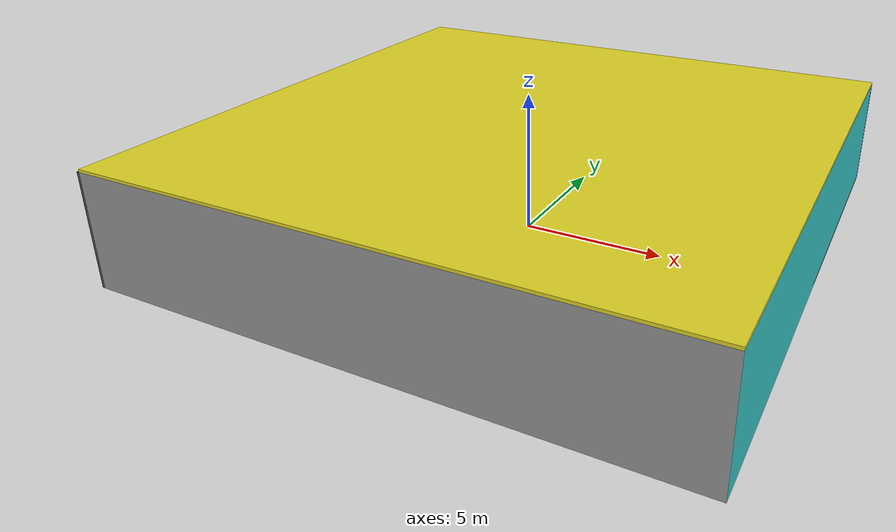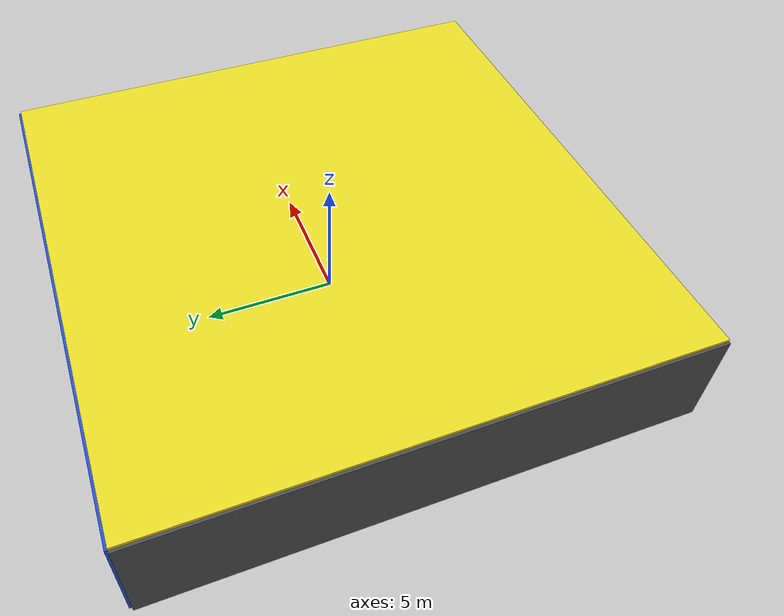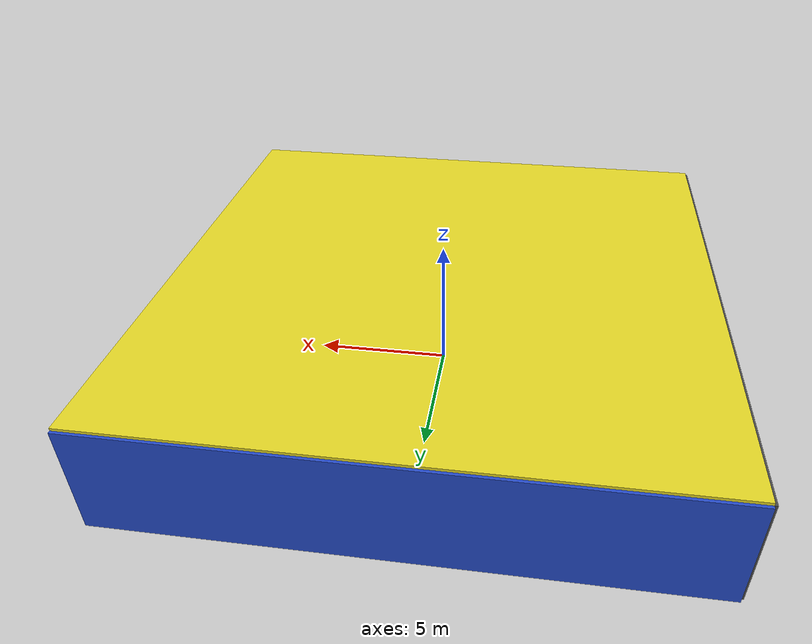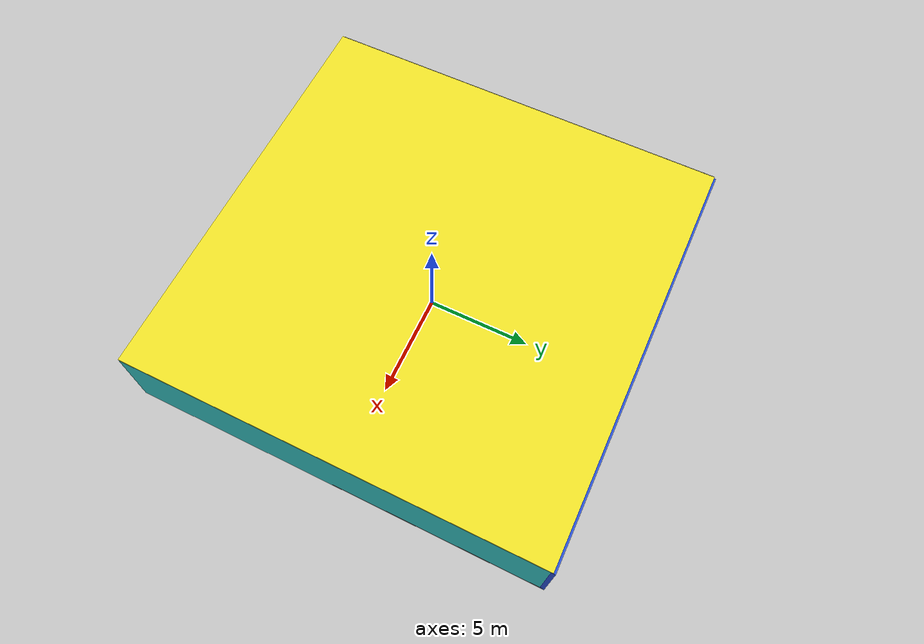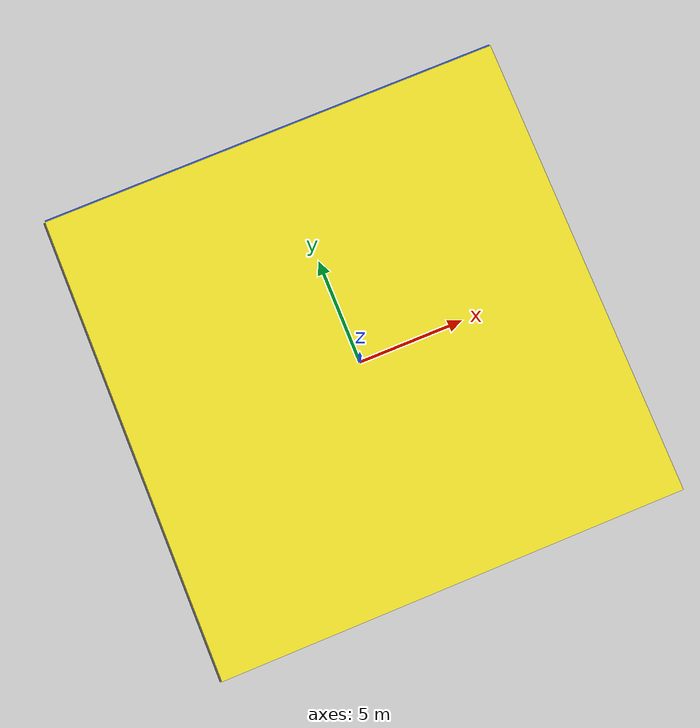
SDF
<sdf version="1.4">
 <world name="default">
  <physics type="ode">
   <max_step_size>0.001</max_step_size>
   <real_time_factor>1</real_time_factor>
   <real_time_update_rate>1000</real_time_update_rate>
   <gravity>0 0 -9.8</gravity>
  </physics>
  <scene><ambient>0.4 0.4 0.4 1</ambient><background>0.7 0.7 0.7 1</background><shadows>1</shadows></scene>
  <model name="Surrounding">
   <static>1</static>
   <link name="Ceiling">
    <collision name="Ceiling_Collision"><geometry><box><size>20 20 0.1</size></box></geometry></collision>
    <visual name="Ceiling_Visual">
     <geometry><box><size>20 20 0.1</size></box></geometry>
     <material>
      <script><uri>file://media/materials/scripts/gazebo.material</uri><name>Gazebo/YellowGlow</name></script>
     </material>
    </visual>
    <pose>0 0 4.05 0 0 0</pose>
   </link>
   <link name="Wall_South">
    <collision name="Wall_South_Collision">
     <geometry><box><size>20 0 4</size></box></geometry>
     <pose>0 0 2 0 -0 0</pose>
    </collision>
    <visual name="Wall_South_Visual">
     <pose>0 0 2 0 -0 0</pose>
     <geometry><box><size>20 0 4</size></box></geometry>
     <material>
      <script><uri>file://media/materials/scripts/gazebo.material</uri><name>Gazebo/Grey</name></script>
     </material>
    </visual>
    <velocity_decay><linear>0</linear><angular>0</angular></velocity_decay>
    <pose>0 -10 0 0 -0 0</pose>
   </link>
   <link name="Wall_East">
    <collision name="Wall_21_Collision">
     <geometry><box><size>20 0 4</size></box></geometry>
     <pose>0 0 2 0 -0 0</pose>
    </collision>
    <visual name="Wall_21_Visual">
     <pose>0 0 2 0 -0 0</pose>
     <geometry><box><size>20 0 4</size></box></geometry>
     <material>
      <script><uri>file://media/materials/scripts/gazebo.material</uri><name>Gazebo/Turquoise</name></script>
     </material>
    </visual>
    <velocity_decay><linear>0</linear><angular>0</angular></velocity_decay>
    <pose>10 0 0 0 -0 1.5708</pose>
   </link>
   <link name="Wall_North">
    <collision name="Wall_22_Collision">
     <geometry><box><size>20 0.2 4</size></box></geometry>
     <pose>0 0 2 0 -0 0</pose>
    </collision>
    <visual name="Wall_22_Visual">
     <pose>0 0 2 0 -0 0</pose>
     <geometry><box><size>20 0.2 4</size></box></geometry>
     <material>
      <script><uri>file://media/materials/scripts/gazebo.material</uri><name>Gazebo/BlueLaser</name></script>
     </material>
    </visual>
    <velocity_decay><linear>0</linear><angular>0</angular></velocity_decay>
    <pose>0 10 0 0 -0 0</pose>
   </link>
   <link name="Wall_West">
    <collision name="Wall_23_Collision">
     <geometry><box><size>20 0.2 4</size></box></geometry>
     <pose>0 0 2 0 -0 0</pose>
    </collision>
    <visual name="Wall_23_Visual">
     <pose>0 0 2 0 -0 0</pose>
     <geometry><box><size>20 0.2 4</size></box></geometry>
     <material>
      <script><uri>file://media/materials/scripts/gazebo.material</uri><name>Gazebo/Road</name></script>
     </material>
    </visual>
    <velocity_decay><linear>0</linear><angular>0</angular></velocity_decay>
    <pose>-10 0 0 0 0 -1.5708</pose>
   </link>
   <link name="Ground_link">
    <collision name="collision">
     <pose>0 0 .05 0 -0 0</pose>
     <geometry><box><size>20 20 0.1</size></box></geometry>
    </collision>
    <visual name="visual">
     <pose>0 0 .05 0 -0 0</pose>
     <geometry><box><size>20 20 0.1</size></box></geometry>
     <material>
      <script><uri>file://media/materials/scripts/gazebo.material</uri><name>Gazebo/Road</name></script>
     </material>
    </visual>
   </link>
   <static>1</static>
  </model>
  <spherical_coordinates>
   <surface_model>EARTH_WGS84</surface_model>
   <latitude_deg>0</latitude_deg>
   <longitude_deg>0</longitude_deg>
   <elevation>0</elevation>
   <heading_deg>0</heading_deg>
  </spherical_coordinates>
  <light name="lightball_0" type="diffuse">
   <diffuse>0.8 0.8 0.8 1</diffuse>
   <specular>0.2 0.2 0.2 1</specular>
   <attenuation>
    <range>100</range>
    <constant>0.7</constant>
    <linear>0.01</linear>
    <quadratic>0.001</quadratic>
   </attenuation>
   <direction>-0.5 0.1 -0.9</direction>
   <pose>-6.97680204862 -6.61236441618 1.03068598866 0 0 0</pose>
  </light>
  <light name="lightball_1" type="diffuse">
   <diffuse>0.8 0.8 0.8 1</diffuse>
   <specular>0.2 0.2 0.2 1</specular>
   <attenuation>
    <range>100</range>
    <constant>0.7</constant>
    <linear>0.01</linear>
    <quadratic>0.001</quadratic>
   </attenuation>
   <direction>-0.5 0.1 -0.9</direction>
   <pose>8.78700946182 9.78055311733 0.590597543234 0 0 0</pose>
  </light>
  <light name="lightball_2" type="diffuse">
   <diffuse>0.8 0.8 0.8 1</diffuse>
   <specular>0.2 0.2 0.2 1</specular>
   <attenuation>
    <range>100</range>
    <constant>0.7</constant>
    <linear>0.01</linear>
    <quadratic>0.001</quadratic>
   </attenuation>
   <direction>-0.5 0.1 -0.9</direction>
   <pose>-4.16932875197 8.56028777938 3.69772887276 0 0 0</pose>
  </light>
  <light name="lightball_3" type="diffuse">
   <diffuse>0.8 0.8 0.8 1</diffuse>
   <specular>0.2 0.2 0.2 1</specular>
   <attenuation>
    <range>100</range>
    <constant>0.7</constant>
    <linear>0.01</linear>
    <quadratic>0.001</quadratic>
   </attenuation>
   <direction>-0.5 0.1 -0.9</direction>
   <pose>3.51624563964 -0.860405377192 1.44762750524 0 0 0</pose>
  </light>
  <light name="lightball_4" type="diffuse">
   <diffuse>0.8 0.8 0.8 1</diffuse>
   <specular>0.2 0.2 0.2 1</specular>
   <attenuation>
    <range>100</range>
    <constant>0.7</constant>
    <linear>0.01</linear>
    <quadratic>0.001</quadratic>
   </attenuation>
   <direction>-0.5 0.1 -0.9</direction>
   <pose>-6.83901970425 -8.7753899974 1.01494050017 0 0 0</pose>
  </light>
  <light name="lightball_5" type="diffuse">
   <diffuse>0.8 0.8 0.8 1</diffuse>
   <specular>0.2 0.2 0.2 1</specular>
   <attenuation>
    <range>100</range>
    <constant>0.7</constant>
    <linear>0.01</linear>
    <quadratic>0.001</quadratic>
   </attenuation>
   <direction>-0.5 0.1 -0.9</direction>
   <pose>-9.15978760009 -9.82466846371 2.19060373552 0 0 0</pose>
  </light>
  <light name="lightball_6" type="diffuse">
   <diffuse>0.8 0.8 0.8 1</diffuse>
   <specular>0.2 0.2 0.2 1</specular>
   <attenuation>
    <range>100</range>
    <constant>0.7</constant>
    <linear>0.01</linear>
    <quadratic>0.001</quadratic>
   </attenuation>
   <direction>-0.5 0.1 -0.9</direction>
   <pose>9.40458333445 7.16584387034 1.27178627609 0 0 0</pose>
  </light>
  <light name="lightball_7" type="diffuse">
   <diffuse>0.8 0.8 0.8 1</diffuse>
   <specular>0.2 0.2 0.2 1</specular>
   <attenuation>
    <range>100</range>
    <constant>0.7</constant>
    <linear>0.01</linear>
    <quadratic>0.001</quadratic>
   </attenuation>
   <direction>-0.5 0.1 -0.9</direction>
   <pose>-1.36184638856 6.3034052797 2.98142297536 0 0 0</pose>
  </light>
  <light name="lightball_8" type="diffuse">
   <diffuse>0.8 0.8 0.8 1</diffuse>
   <specular>0.2 0.2 0.2 1</specular>
   <attenuation>
    <range>100</range>
    <constant>0.7</constant>
    <linear>0.01</linear>
    <quadratic>0.001</quadratic>
   </attenuation>
   <direction>-0.5 0.1 -0.9</direction>
   <pose>-3.06992522548 3.8724458213 1.01263889336 0 0 0</pose>
  </light>
  <light name="lightball_9" type="diffuse">
   <diffuse>0.8 0.8 0.8 1</diffuse>
   <specular>0.2 0.2 0.2 1</specular>
   <attenuation>
    <range>100</range>
    <constant>0.7</constant>
    <linear>0.01</linear>
    <quadratic>0.001</quadratic>
   </attenuation>
   <direction>-0.5 0.1 -0.9</direction>
   <pose>-0.300151325841 4.88082631617 0.622935339816 0 0 0</pose>
  </light>
  <light name="lightball_10" type="diffuse">
   <diffuse>0.8 0.8 0.8 1</diffuse>
   <specular>0.2 0.2 0.2 1</specular>
   <attenuation>
    <range>100</range>
    <constant>0.7</constant>
    <linear>0.01</linear>
    <quadratic>0.001</quadratic>
   </attenuation>
   <direction>-0.5 0.1 -0.9</direction>
   <pose>9.64862345585 -6.16061510755 3.74802694658 0 0 0</pose>
  </light>
  <light name="lightball_11" type="diffuse">
   <diffuse>0.8 0.8 0.8 1</diffuse>
   <specular>0.2 0.2 0.2 1</specular>
   <attenuation>
    <range>100</range>
    <constant>0.7</constant>
    <linear>0.01</linear>
    <quadratic>0.001</quadratic>
   </attenuation>
   <direction>-0.5 0.1 -0.9</direction>
   <pose>6.99567660793 -6.47056492302 1.27630896445 0 0 0</pose>
  </light>
  <include>
   <uri>model://construction_cone</uri>
   <pose>-7.08368937339 2.24425681486 0 0 0 1.8906476754</pose>
  </include>
  <include>
   <uri>model://construction_cone</uri>
   <pose>3.75897128819 -4.17133990929 0 0 0 0.156963086094</pose>
  </include>
  <include><uri>model://cabinet</uri><pose>7.6542649959 -4.2666379432 0 0 0 2.28310260877</pose></include>
 </world>
</sdf>

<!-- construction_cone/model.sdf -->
<sdf version="1.5">
  <model name="Construction Cone">
    <link name="link">
      <collision name="collision">
        <geometry>
          <mesh>
            <scale>10 10 10</scale>
            <uri>file://isr-testbed/construction_cone/meshes/construction_cone.dae</uri>
          </mesh>
        </geometry>
      </collision>
      <visual name="visual">
        <geometry>
          <mesh>
            <scale>10 10 10</scale>
            <uri>file://isr-testbed/construction_cone/meshes/construction_cone.dae</uri>
          </mesh>
        </geometry>
      </visual>
    </link>
  </model>
</sdf>

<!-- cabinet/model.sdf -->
<sdf version="1.5">
  <model name="cabinet">
    <static>true</static>
    <link name="cabinet_bottom_plate">
      <inertial>
        <pose>0 0 -1 0 0 0</pose>
        <inertia>
          <ixx>2.050000</ixx>
          <ixy>0</ixy>
          <ixz>0</ixz>
          <iyy>2.050000</iyy>
          <iyz>0</iyz>
          <izz>2.050000</izz>
        </inertia>
        <mass>25.000000</mass>
      </inertial>
      <collision name="cabinet_bottom_plate_geom">
        <pose>0 0 0.010000 0 0 0</pose>
        <geometry>
          <box>
            <size>0.450000 0.450000 0.020000</size>
          </box>
        </geometry>
      </collision>
      <visual name="cabinet_bottom_plate_geom_visual">
        <pose>0 0 0.010000 0 0 0</pose>
        <geometry>
          <box>
            <size>0.450000 0.450000 0.020000</size>
          </box>
        </geometry>
        <material>
          <script>
            <uri>model://media/materials/scripts/gazebo.material</uri>
            <name>Gazebo/Wood</name>
          </script>
        </material>
      </visual>
      <collision name="cabinet_bottom_plate_geom_cabinet_back_plate">
        <pose>0.235000 0 0.510000 0 0 0</pose>
        <geometry>
          <box>
            <size>0.020000 0.450000 1.020000</size>
          </box>
        </geometry>
      </collision>
      <visual name="cabinet_bottom_plate_geom_cabinet_back_plate_visual">
        <pose>0.235000 0 0.510000 0 0 0</pose>
        <geometry>
          <box>
            <size>0.020000 0.450000 1.020000</size>
          </box>
        </geometry>
        <material>
          <script>
            <uri>model://media/materials/scripts/gazebo.material</uri>
            <name>Gazebo/Wood</name>
          </script>
        </material>
      </visual>
      <collision name="cabinet_bottom_plate_geom_cabinet_left_plate">
        <pose>0 0.235000 0.510000 0 0 0</pose>
        <geometry>
          <box>
            <size>0.450000 0.020000 1.020000</size>
          </box>
        </geometry>
      </collision>
      <visual name="cabinet_bottom_plate_geom_cabinet_left_plate_visual">
        <pose>0 0.235000 0.510000 0 0 0</pose>
        <geometry>
          <box>
            <size>0.450000 0.020000 1.020000</size>
          </box>
        </geometry>
        <material>
          <script>
            <uri>model://media/materials/scripts/gazebo.material</uri>
            <name>Gazebo/Wood</name>
          </script>
        </material>
      </visual>
      <collision name="cabinet_bottom_plate_geom_cabinet_middle_plate">
        <pose>0 0 0.510000 0 0 0</pose>
        <geometry>
          <box>
            <size>0.450000 0.450000 0.020000</size>
          </box>
        </geometry>
      </collision>
      <visual name="cabinet_bottom_plate_geom_cabinet_middle_plate_visual">
        <pose>0 0 0.510000 0 0 0</pose>
        <geometry>
          <box>
            <size>0.450000 0.450000 0.020000</size>
          </box>
        </geometry>
        <material>
          <script>
            <uri>model://media/materials/scripts/gazebo.material</uri>
            <name>Gazebo/Wood</name>
          </script>
        </material>
      </visual>
      <collision name="cabinet_bottom_plate_geom_cabinet_right_plate">
        <pose>0 -0.235000 0.510000 0 0 0</pose>
        <geometry>
          <box>
            <size>0.450000 0.020000 1.020000</size>
          </box>
        </geometry>
      </collision>
      <visual name="cabinet_bottom_plate_geom_cabinet_right_plate_visual">
        <pose>0 -0.235000 0.510000 0 0 0</pose>
        <geometry>
          <box>
            <size>0.450000 0.020000 1.020000</size>
          </box>
        </geometry>
        <material>
          <script>
            <uri>model://media/materials/scripts/gazebo.material</uri>
            <name>Gazebo/Wood</name>
          </script>
        </material>
      </visual>
      <collision name="cabinet_bottom_plate_geom_cabinet_top_plate">
        <pose>0 0 1.010000 0 0 0</pose>
        <geometry>
          <box>
            <size>0.450000 0.450000 0.020000</size>
          </box>
        </geometry>
      </collision>
      <visual name="cabinet_bottom_plate_geom_cabinet_top_plate_visual">
        <pose>0 0 1.010000 0 0 0</pose>
        <geometry>
          <box>
            <size>0.450000 0.450000 0.020000</size>
          </box>
        </geometry>
        <material>
          <script>
            <uri>model://media/materials/scripts/gazebo.material</uri>
            <name>Gazebo/Wood</name>
          </script>
        </material>
      </visual>
    </link>
  </model>
</sdf>
